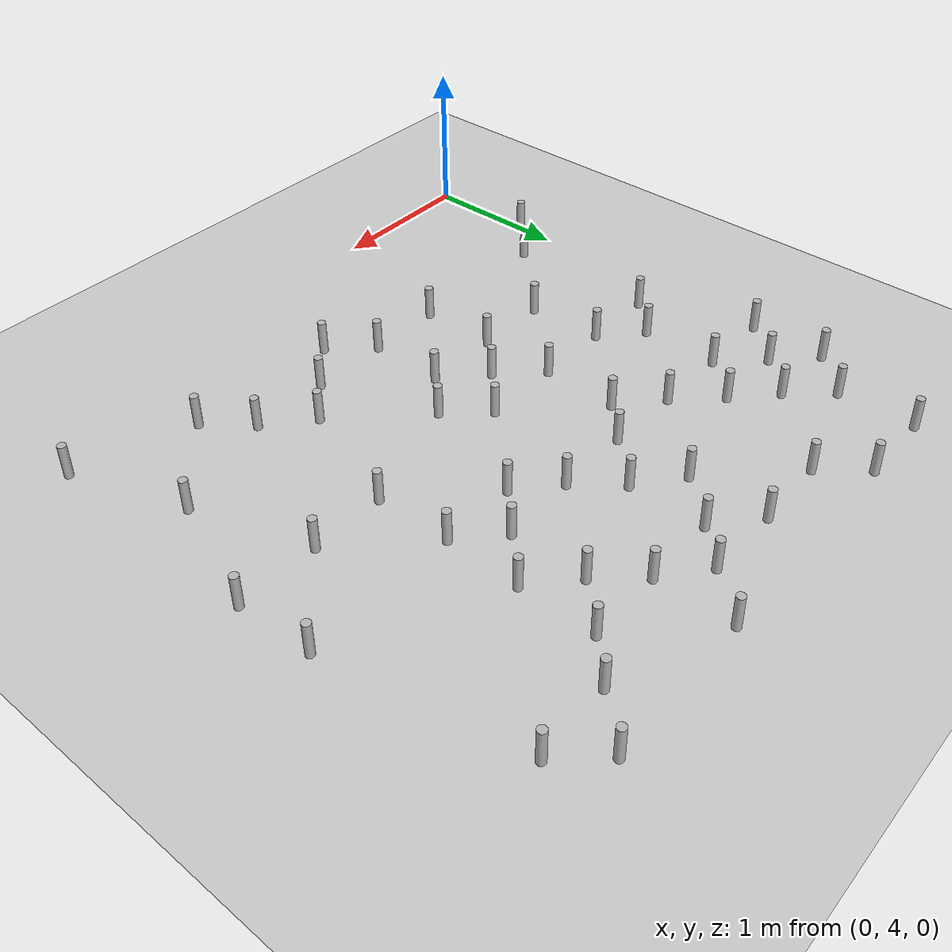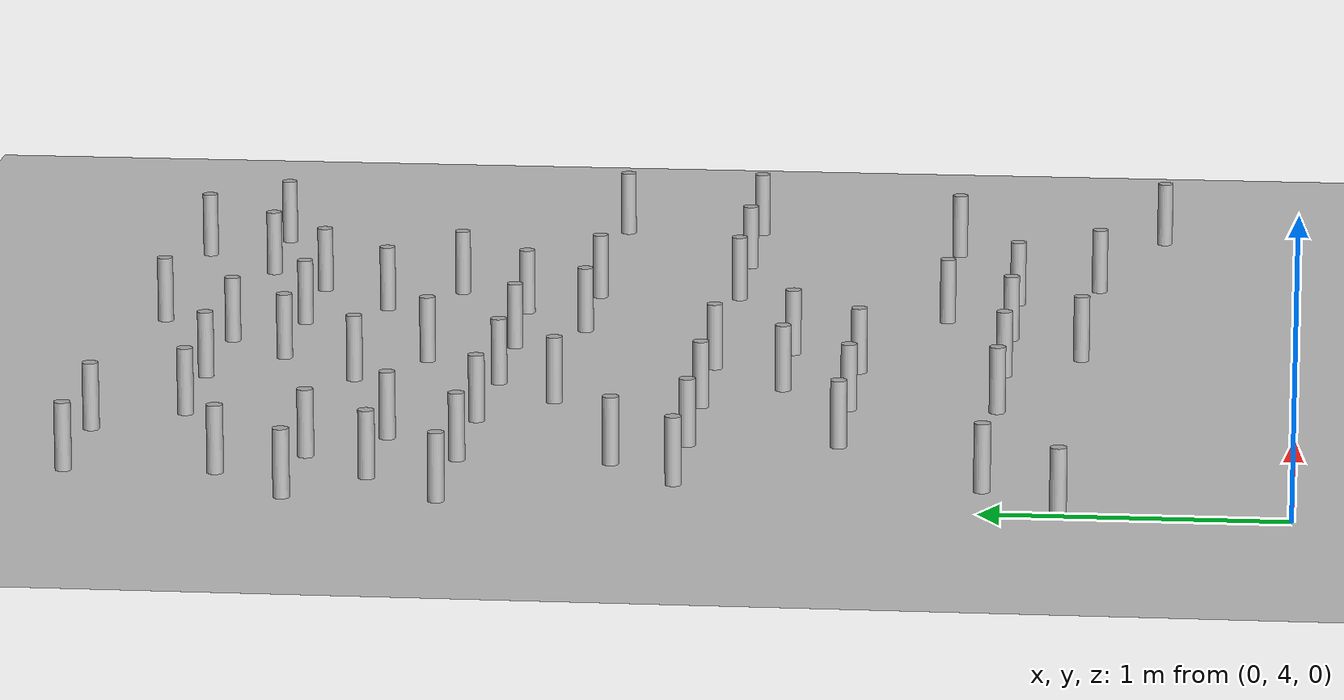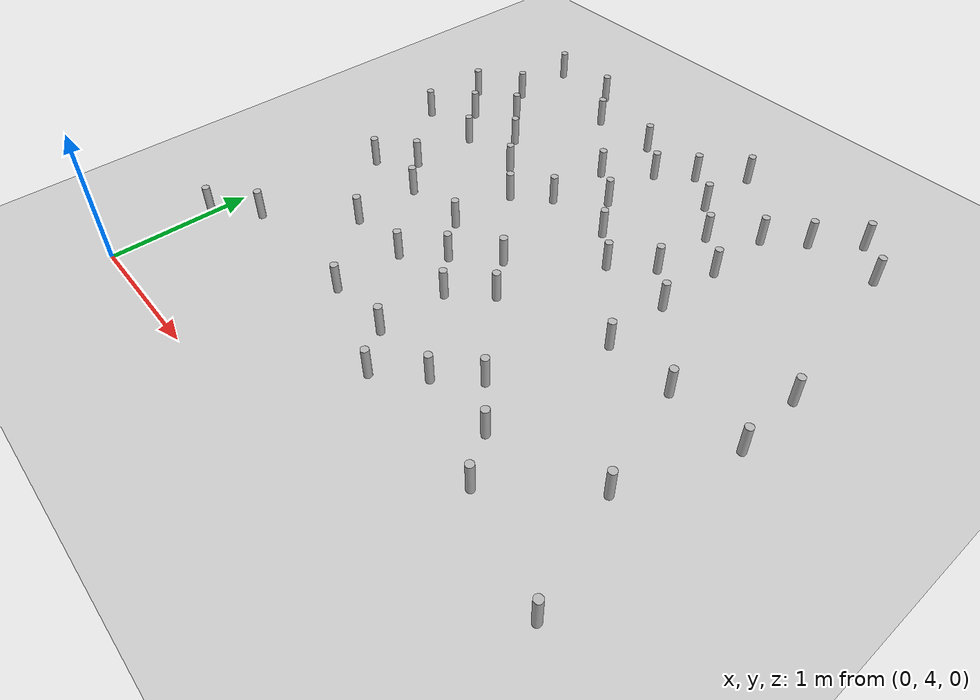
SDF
<sdf version="1.6">
 <world name="default">
  <model name="ground_plane">
   <static>1</static>
   <link name="link">
    <collision name="collision">
     <geometry><plane><normal>0 0 1</normal><size>100 100</size></plane></geometry>
     <surface><friction><ode><mu>100</mu><mu2>50</mu2></ode></friction></surface>
    </collision>
    <visual name="visual">
     <cast_shadows>0</cast_shadows>
     <geometry><plane><normal>0 0 1</normal><size>100 100</size></plane></geometry>
     <material>
      <script><uri>file://media/materials/scripts/gazebo.material</uri><name>Gazebo/Grey</name></script>
     </material>
    </visual>
   </link>
  </model>
  <model name="can1.07.71864535366">
   <link name="link">
    <pose>0 0 0.115 0 -0 0</pose>
    <inertial>
     <mass>0.39</mass>
     <inertia><ixx>0.00058</ixx><ixy>0</ixy><ixz>0</ixz><iyy>0.00058</iyy><iyz>0</iyz><izz>0.00019</izz></inertia>
    </inertial>
    <collision name="collision">
     <geometry><cylinder><radius>0.0275</radius><length>0.23</length></cylinder></geometry>
    </collision>
    <visual name="visual">
     <geometry><cylinder><radius>0.0275</radius><length>0.23</length></cylinder></geometry>
     <material>
      <script>
       <uri>model://beer/materials/scripts</uri>
       <uri>model://beer/materials/textures</uri>
       <name>Beer/Diffuse</name>
      </script>
     </material>
    </visual>
   </link>
   <pose>1.0 7.71864535366 -2e-06 1e-06 0 -9.5e-05</pose>
  </model>
  <model name="can3.251200035556.0">
   <link name="link">
    <pose>0 0 0.115 0 -0 0</pose>
    <inertial>
     <mass>0.39</mass>
     <inertia><ixx>0.00058</ixx><ixy>0</ixy><ixz>0</ixz><iyy>0.00058</iyy><iyz>0</iyz><izz>0.00019</izz></inertia>
    </inertial>
    <collision name="collision">
     <geometry><cylinder><radius>0.0275</radius><length>0.23</length></cylinder></geometry>
    </collision>
    <visual name="visual">
     <geometry><cylinder><radius>0.0275</radius><length>0.23</length></cylinder></geometry>
     <material>
      <script>
       <uri>model://beer/materials/scripts</uri>
       <uri>model://beer/materials/textures</uri>
       <name>Beer/Diffuse</name>
      </script>
     </material>
    </visual>
   </link>
   <pose>3.25120003555 6.0 -2e-06 1e-06 0 -9.5e-05</pose>
  </model>
  <model name="can1.55.7417198135">
   <link name="link">
    <pose>0 0 0.115 0 -0 0</pose>
    <inertial>
     <mass>0.39</mass>
     <inertia><ixx>0.00058</ixx><ixy>0</ixy><ixz>0</ixz><iyy>0.00058</iyy><iyz>0</iyz><izz>0.00019</izz></inertia>
    </inertial>
    <collision name="collision">
     <geometry><cylinder><radius>0.0275</radius><length>0.23</length></cylinder></geometry>
    </collision>
    <visual name="visual">
     <geometry><cylinder><radius>0.0275</radius><length>0.23</length></cylinder></geometry>
     <material>
      <script>
       <uri>model://beer/materials/scripts</uri>
       <uri>model://beer/materials/textures</uri>
       <name>Beer/Diffuse</name>
      </script>
     </material>
    </visual>
   </link>
   <pose>1.5 5.7417198135 -2e-06 1e-06 0 -9.5e-05</pose>
  </model>
  <model name="can3.26268632878.0">
   <link name="link">
    <pose>0 0 0.115 0 -0 0</pose>
    <inertial>
     <mass>0.39</mass>
     <inertia><ixx>0.00058</ixx><ixy>0</ixy><ixz>0</ixz><iyy>0.00058</iyy><iyz>0</iyz><izz>0.00019</izz></inertia>
    </inertial>
    <collision name="collision">
     <geometry><cylinder><radius>0.0275</radius><length>0.23</length></cylinder></geometry>
    </collision>
    <visual name="visual">
     <geometry><cylinder><radius>0.0275</radius><length>0.23</length></cylinder></geometry>
     <material>
      <script>
       <uri>model://beer/materials/scripts</uri>
       <uri>model://beer/materials/textures</uri>
       <name>Beer/Diffuse</name>
      </script>
     </material>
    </visual>
   </link>
   <pose>3.2626863287 8.0 -2e-06 1e-06 0 -9.5e-05</pose>
  </model>
  <model name="can1.57.73077224657">
   <link name="link">
    <pose>0 0 0.115 0 -0 0</pose>
    <inertial>
     <mass>0.39</mass>
     <inertia><ixx>0.00058</ixx><ixy>0</ixy><ixz>0</ixz><iyy>0.00058</iyy><iyz>0</iyz><izz>0.00019</izz></inertia>
    </inertial>
    <collision name="collision">
     <geometry><cylinder><radius>0.0275</radius><length>0.23</length></cylinder></geometry>
    </collision>
    <visual name="visual">
     <geometry><cylinder><radius>0.0275</radius><length>0.23</length></cylinder></geometry>
     <material>
      <script>
       <uri>model://beer/materials/scripts</uri>
       <uri>model://beer/materials/textures</uri>
       <name>Beer/Diffuse</name>
      </script>
     </material>
    </visual>
   </link>
   <pose>1.5 7.73077224657 -2e-06 1e-06 0 -9.5e-05</pose>
  </model>
  <model name="can0.57.23638221713">
   <link name="link">
    <pose>0 0 0.115 0 -0 0</pose>
    <inertial>
     <mass>0.39</mass>
     <inertia><ixx>0.00058</ixx><ixy>0</ixy><ixz>0</ixz><iyy>0.00058</iyy><iyz>0</iyz><izz>0.00019</izz></inertia>
    </inertial>
    <collision name="collision">
     <geometry><cylinder><radius>0.0275</radius><length>0.23</length></cylinder></geometry>
    </collision>
    <visual name="visual">
     <geometry><cylinder><radius>0.0275</radius><length>0.23</length></cylinder></geometry>
     <material>
      <script>
       <uri>model://beer/materials/scripts</uri>
       <uri>model://beer/materials/textures</uri>
       <name>Beer/Diffuse</name>
      </script>
     </material>
    </visual>
   </link>
   <pose>0.5 7.23638221713 -2e-06 1e-06 0 -9.5e-05</pose>
  </model>
  <model name="can1.06.73229137934">
   <link name="link">
    <pose>0 0 0.115 0 -0 0</pose>
    <inertial>
     <mass>0.39</mass>
     <inertia><ixx>0.00058</ixx><ixy>0</ixy><ixz>0</ixz><iyy>0.00058</iyy><iyz>0</iyz><izz>0.00019</izz></inertia>
    </inertial>
    <collision name="collision">
     <geometry><cylinder><radius>0.0275</radius><length>0.23</length></cylinder></geometry>
    </collision>
    <visual name="visual">
     <geometry><cylinder><radius>0.0275</radius><length>0.23</length></cylinder></geometry>
     <material>
      <script>
       <uri>model://beer/materials/scripts</uri>
       <uri>model://beer/materials/textures</uri>
       <name>Beer/Diffuse</name>
      </script>
     </material>
    </visual>
   </link>
   <pose>1.0 6.73229137934 -2e-06 1e-06 0 -9.5e-05</pose>
  </model>
  <model name="can0.25373270277.0">
   <link name="link">
    <pose>0 0 0.115 0 -0 0</pose>
    <inertial>
     <mass>0.39</mass>
     <inertia><ixx>0.00058</ixx><ixy>0</ixy><ixz>0</ixz><iyy>0.00058</iyy><iyz>0</iyz><izz>0.00019</izz></inertia>
    </inertial>
    <collision name="collision">
     <geometry><cylinder><radius>0.0275</radius><length>0.23</length></cylinder></geometry>
    </collision>
    <visual name="visual">
     <geometry><cylinder><radius>0.0275</radius><length>0.23</length></cylinder></geometry>
     <material>
      <script>
       <uri>model://beer/materials/scripts</uri>
       <uri>model://beer/materials/textures</uri>
       <name>Beer/Diffuse</name>
      </script>
     </material>
    </visual>
   </link>
   <pose>0.2537327027 7.0 -2e-06 1e-06 0 -9.5e-05</pose>
  </model>
  <model name="can2.07.71637304159">
   <link name="link">
    <pose>0 0 0.115 0 -0 0</pose>
    <inertial>
     <mass>0.39</mass>
     <inertia><ixx>0.00058</ixx><ixy>0</ixy><ixz>0</ixz><iyy>0.00058</iyy><iyz>0</iyz><izz>0.00019</izz></inertia>
    </inertial>
    <collision name="collision">
     <geometry><cylinder><radius>0.0275</radius><length>0.23</length></cylinder></geometry>
    </collision>
    <visual name="visual">
     <geometry><cylinder><radius>0.0275</radius><length>0.23</length></cylinder></geometry>
     <material>
      <script>
       <uri>model://beer/materials/scripts</uri>
       <uri>model://beer/materials/textures</uri>
       <name>Beer/Diffuse</name>
      </script>
     </material>
    </visual>
   </link>
   <pose>2.0 7.71637304159 -2e-06 1e-06 0 -9.5e-05</pose>
  </model>
  <model name="can1.270332725475.0">
   <link name="link">
    <pose>0 0 0.115 0 -0 0</pose>
    <inertial>
     <mass>0.39</mass>
     <inertia><ixx>0.00058</ixx><ixy>0</ixy><ixz>0</ixz><iyy>0.00058</iyy><iyz>0</iyz><izz>0.00019</izz></inertia>
    </inertial>
    <collision name="collision">
     <geometry><cylinder><radius>0.0275</radius><length>0.23</length></cylinder></geometry>
    </collision>
    <visual name="visual">
     <geometry><cylinder><radius>0.0275</radius><length>0.23</length></cylinder></geometry>
     <material>
      <script>
       <uri>model://beer/materials/scripts</uri>
       <uri>model://beer/materials/textures</uri>
       <name>Beer/Diffuse</name>
      </script>
     </material>
    </visual>
   </link>
   <pose>1.27033272547 5.0 -2e-06 1e-06 0 -9.5e-05</pose>
  </model>
  <model name="can0.2743662335275.0">
   <link name="link">
    <pose>0 0 0.115 0 -0 0</pose>
    <inertial>
     <mass>0.39</mass>
     <inertia><ixx>0.00058</ixx><ixy>0</ixy><ixz>0</ixz><iyy>0.00058</iyy><iyz>0</iyz><izz>0.00019</izz></inertia>
    </inertial>
    <collision name="collision">
     <geometry><cylinder><radius>0.0275</radius><length>0.23</length></cylinder></geometry>
    </collision>
    <visual name="visual">
     <geometry><cylinder><radius>0.0275</radius><length>0.23</length></cylinder></geometry>
     <material>
      <script>
       <uri>model://beer/materials/scripts</uri>
       <uri>model://beer/materials/textures</uri>
       <name>Beer/Diffuse</name>
      </script>
     </material>
    </visual>
   </link>
   <pose>0.274366233527 5.0 -2e-06 1e-06 0 -9.5e-05</pose>
  </model>
  <model name="can0.56.73592905389">
   <link name="link">
    <pose>0 0 0.115 0 -0 0</pose>
    <inertial>
     <mass>0.39</mass>
     <inertia><ixx>0.00058</ixx><ixy>0</ixy><ixz>0</ixz><iyy>0.00058</iyy><iyz>0</iyz><izz>0.00019</izz></inertia>
    </inertial>
    <collision name="collision">
     <geometry><cylinder><radius>0.0275</radius><length>0.23</length></cylinder></geometry>
    </collision>
    <visual name="visual">
     <geometry><cylinder><radius>0.0275</radius><length>0.23</length></cylinder></geometry>
     <material>
      <script>
       <uri>model://beer/materials/scripts</uri>
       <uri>model://beer/materials/textures</uri>
       <name>Beer/Diffuse</name>
      </script>
     </material>
    </visual>
   </link>
   <pose>0.5 6.73592905389 -2e-06 1e-06 0 -9.5e-05</pose>
  </model>
  <model name="can2.26621983638.0">
   <link name="link">
    <pose>0 0 0.115 0 -0 0</pose>
    <inertial>
     <mass>0.39</mass>
     <inertia><ixx>0.00058</ixx><ixy>0</ixy><ixz>0</ixz><iyy>0.00058</iyy><iyz>0</iyz><izz>0.00019</izz></inertia>
    </inertial>
    <collision name="collision">
     <geometry><cylinder><radius>0.0275</radius><length>0.23</length></cylinder></geometry>
    </collision>
    <visual name="visual">
     <geometry><cylinder><radius>0.0275</radius><length>0.23</length></cylinder></geometry>
     <material>
      <script>
       <uri>model://beer/materials/scripts</uri>
       <uri>model://beer/materials/textures</uri>
       <name>Beer/Diffuse</name>
      </script>
     </material>
    </visual>
   </link>
   <pose>2.2662198363 8.0 -2e-06 1e-06 0 -9.5e-05</pose>
  </model>
  <model name="can0.2615410947188.0">
   <link name="link">
    <pose>0 0 0.115 0 -0 0</pose>
    <inertial>
     <mass>0.39</mass>
     <inertia><ixx>0.00058</ixx><ixy>0</ixy><ixz>0</ixz><iyy>0.00058</iyy><iyz>0</iyz><izz>0.00019</izz></inertia>
    </inertial>
    <collision name="collision">
     <geometry><cylinder><radius>0.0275</radius><length>0.23</length></cylinder></geometry>
    </collision>
    <visual name="visual">
     <geometry><cylinder><radius>0.0275</radius><length>0.23</length></cylinder></geometry>
     <material>
      <script>
       <uri>model://beer/materials/scripts</uri>
       <uri>model://beer/materials/textures</uri>
       <name>Beer/Diffuse</name>
      </script>
     </material>
    </visual>
   </link>
   <pose>0.261541094718 8.0 -2e-06 1e-06 0 -9.5e-05</pose>
  </model>
  <model name="can0.7530170957196.0">
   <link name="link">
    <pose>0 0 0.115 0 -0 0</pose>
    <inertial>
     <mass>0.39</mass>
     <inertia><ixx>0.00058</ixx><ixy>0</ixy><ixz>0</ixz><iyy>0.00058</iyy><iyz>0</iyz><izz>0.00019</izz></inertia>
    </inertial>
    <collision name="collision">
     <geometry><cylinder><radius>0.0275</radius><length>0.23</length></cylinder></geometry>
    </collision>
    <visual name="visual">
     <geometry><cylinder><radius>0.0275</radius><length>0.23</length></cylinder></geometry>
     <material>
      <script>
       <uri>model://beer/materials/scripts</uri>
       <uri>model://beer/materials/textures</uri>
       <name>Beer/Diffuse</name>
      </script>
     </material>
    </visual>
   </link>
   <pose>0.753017095719 6.0 -2e-06 1e-06 0 -9.5e-05</pose>
  </model>
  <model name="can3.04.71551718072">
   <link name="link">
    <pose>0 0 0.115 0 -0 0</pose>
    <inertial>
     <mass>0.39</mass>
     <inertia><ixx>0.00058</ixx><ixy>0</ixy><ixz>0</ixz><iyy>0.00058</iyy><iyz>0</iyz><izz>0.00019</izz></inertia>
    </inertial>
    <collision name="collision">
     <geometry><cylinder><radius>0.0275</radius><length>0.23</length></cylinder></geometry>
    </collision>
    <visual name="visual">
     <geometry><cylinder><radius>0.0275</radius><length>0.23</length></cylinder></geometry>
     <material>
      <script>
       <uri>model://beer/materials/scripts</uri>
       <uri>model://beer/materials/textures</uri>
       <name>Beer/Diffuse</name>
      </script>
     </material>
    </visual>
   </link>
   <pose>3.0 4.71551718072 -2e-06 1e-06 0 -9.5e-05</pose>
  </model>
  <model name="can1.57.21565840624">
   <link name="link">
    <pose>0 0 0.115 0 -0 0</pose>
    <inertial>
     <mass>0.39</mass>
     <inertia><ixx>0.00058</ixx><ixy>0</ixy><ixz>0</ixz><iyy>0.00058</iyy><iyz>0</iyz><izz>0.00019</izz></inertia>
    </inertial>
    <collision name="collision">
     <geometry><cylinder><radius>0.0275</radius><length>0.23</length></cylinder></geometry>
    </collision>
    <visual name="visual">
     <geometry><cylinder><radius>0.0275</radius><length>0.23</length></cylinder></geometry>
     <material>
      <script>
       <uri>model://beer/materials/scripts</uri>
       <uri>model://beer/materials/textures</uri>
       <name>Beer/Diffuse</name>
      </script>
     </material>
    </visual>
   </link>
   <pose>1.5 7.21565840624 -2e-06 1e-06 0 -9.5e-05</pose>
  </model>
  <model name="can2.06.72047511491">
   <link name="link">
    <pose>0 0 0.115 0 -0 0</pose>
    <inertial>
     <mass>0.39</mass>
     <inertia><ixx>0.00058</ixx><ixy>0</ixy><ixz>0</ixz><iyy>0.00058</iyy><iyz>0</iyz><izz>0.00019</izz></inertia>
    </inertial>
    <collision name="collision">
     <geometry><cylinder><radius>0.0275</radius><length>0.23</length></cylinder></geometry>
    </collision>
    <visual name="visual">
     <geometry><cylinder><radius>0.0275</radius><length>0.23</length></cylinder></geometry>
     <material>
      <script>
       <uri>model://beer/materials/scripts</uri>
       <uri>model://beer/materials/textures</uri>
       <name>Beer/Diffuse</name>
      </script>
     </material>
    </visual>
   </link>
   <pose>2.0 6.72047511491 -2e-06 1e-06 0 -9.5e-05</pose>
  </model>
  <model name="can3.57.74040622642">
   <link name="link">
    <pose>0 0 0.115 0 -0 0</pose>
    <inertial>
     <mass>0.39</mass>
     <inertia><ixx>0.00058</ixx><ixy>0</ixy><ixz>0</ixz><iyy>0.00058</iyy><iyz>0</iyz><izz>0.00019</izz></inertia>
    </inertial>
    <collision name="collision">
     <geometry><cylinder><radius>0.0275</radius><length>0.23</length></cylinder></geometry>
    </collision>
    <visual name="visual">
     <geometry><cylinder><radius>0.0275</radius><length>0.23</length></cylinder></geometry>
     <material>
      <script>
       <uri>model://beer/materials/scripts</uri>
       <uri>model://beer/materials/textures</uri>
       <name>Beer/Diffuse</name>
      </script>
     </material>
    </visual>
   </link>
   <pose>3.5 7.74040622642 -2e-06 1e-06 0 -9.5e-05</pose>
  </model>
  <model name="can1.782580695847.0">
   <link name="link">
    <pose>0 0 0.115 0 -0 0</pose>
    <inertial>
     <mass>0.39</mass>
     <inertia><ixx>0.00058</ixx><ixy>0</ixy><ixz>0</ixz><iyy>0.00058</iyy><iyz>0</iyz><izz>0.00019</izz></inertia>
    </inertial>
    <collision name="collision">
     <geometry><cylinder><radius>0.0275</radius><length>0.23</length></cylinder></geometry>
    </collision>
    <visual name="visual">
     <geometry><cylinder><radius>0.0275</radius><length>0.23</length></cylinder></geometry>
     <material>
      <script>
       <uri>model://beer/materials/scripts</uri>
       <uri>model://beer/materials/textures</uri>
       <name>Beer/Diffuse</name>
      </script>
     </material>
    </visual>
   </link>
   <pose>1.78258069584 7.0 -2e-06 1e-06 0 -9.5e-05</pose>
  </model>
  <model name="can2.274333055627.5">
   <link name="link">
    <pose>0 0 0.115 0 -0 0</pose>
    <inertial>
     <mass>0.39</mass>
     <inertia><ixx>0.00058</ixx><ixy>0</ixy><ixz>0</ixz><iyy>0.00058</iyy><iyz>0</iyz><izz>0.00019</izz></inertia>
    </inertial>
    <collision name="collision">
     <geometry><cylinder><radius>0.0275</radius><length>0.23</length></cylinder></geometry>
    </collision>
    <visual name="visual">
     <geometry><cylinder><radius>0.0275</radius><length>0.23</length></cylinder></geometry>
     <material>
      <script>
       <uri>model://beer/materials/scripts</uri>
       <uri>model://beer/materials/textures</uri>
       <name>Beer/Diffuse</name>
      </script>
     </material>
    </visual>
   </link>
   <pose>2.27433305562 7.5 -2e-06 1e-06 0 -9.5e-05</pose>
  </model>
  <model name="can1.56.71661986498">
   <link name="link">
    <pose>0 0 0.115 0 -0 0</pose>
    <inertial>
     <mass>0.39</mass>
     <inertia><ixx>0.00058</ixx><ixy>0</ixy><ixz>0</ixz><iyy>0.00058</iyy><iyz>0</iyz><izz>0.00019</izz></inertia>
    </inertial>
    <collision name="collision">
     <geometry><cylinder><radius>0.0275</radius><length>0.23</length></cylinder></geometry>
    </collision>
    <visual name="visual">
     <geometry><cylinder><radius>0.0275</radius><length>0.23</length></cylinder></geometry>
     <material>
      <script>
       <uri>model://beer/materials/scripts</uri>
       <uri>model://beer/materials/textures</uri>
       <name>Beer/Diffuse</name>
      </script>
     </material>
    </visual>
   </link>
   <pose>1.5 6.71661986498 -2e-06 1e-06 0 -9.5e-05</pose>
  </model>
  <model name="can0.777479568265.5">
   <link name="link">
    <pose>0 0 0.115 0 -0 0</pose>
    <inertial>
     <mass>0.39</mass>
     <inertia><ixx>0.00058</ixx><ixy>0</ixy><ixz>0</ixz><iyy>0.00058</iyy><iyz>0</iyz><izz>0.00019</izz></inertia>
    </inertial>
    <collision name="collision">
     <geometry><cylinder><radius>0.0275</radius><length>0.23</length></cylinder></geometry>
    </collision>
    <visual name="visual">
     <geometry><cylinder><radius>0.0275</radius><length>0.23</length></cylinder></geometry>
     <material>
      <script>
       <uri>model://beer/materials/scripts</uri>
       <uri>model://beer/materials/textures</uri>
       <name>Beer/Diffuse</name>
      </script>
     </material>
    </visual>
   </link>
   <pose>0.77747956826 5.5 -2e-06 1e-06 0 -9.5e-05</pose>
  </model>
  <model name="can3.778318997486.0">
   <link name="link">
    <pose>0 0 0.115 0 -0 0</pose>
    <inertial>
     <mass>0.39</mass>
     <inertia><ixx>0.00058</ixx><ixy>0</ixy><ixz>0</ixz><iyy>0.00058</iyy><iyz>0</iyz><izz>0.00019</izz></inertia>
    </inertial>
    <collision name="collision">
     <geometry><cylinder><radius>0.0275</radius><length>0.23</length></cylinder></geometry>
    </collision>
    <visual name="visual">
     <geometry><cylinder><radius>0.0275</radius><length>0.23</length></cylinder></geometry>
     <material>
      <script>
       <uri>model://beer/materials/scripts</uri>
       <uri>model://beer/materials/textures</uri>
       <name>Beer/Diffuse</name>
      </script>
     </material>
    </visual>
   </link>
   <pose>3.77831899748 6.0 -2e-06 1e-06 0 -9.5e-05</pose>
  </model>
  <model name="can0.7751452389848.0">
   <link name="link">
    <pose>0 0 0.115 0 -0 0</pose>
    <inertial>
     <mass>0.39</mass>
     <inertia><ixx>0.00058</ixx><ixy>0</ixy><ixz>0</ixz><iyy>0.00058</iyy><iyz>0</iyz><izz>0.00019</izz></inertia>
    </inertial>
    <collision name="collision">
     <geometry><cylinder><radius>0.0275</radius><length>0.23</length></cylinder></geometry>
    </collision>
    <visual name="visual">
     <geometry><cylinder><radius>0.0275</radius><length>0.23</length></cylinder></geometry>
     <material>
      <script>
       <uri>model://beer/materials/scripts</uri>
       <uri>model://beer/materials/textures</uri>
       <name>Beer/Diffuse</name>
      </script>
     </material>
    </visual>
   </link>
   <pose>0.775145238984 8.0 -2e-06 1e-06 0 -9.5e-05</pose>
  </model>
  <model name="can2.05.74575898801">
   <link name="link">
    <pose>0 0 0.115 0 -0 0</pose>
    <inertial>
     <mass>0.39</mass>
     <inertia><ixx>0.00058</ixx><ixy>0</ixy><ixz>0</ixz><iyy>0.00058</iyy><iyz>0</iyz><izz>0.00019</izz></inertia>
    </inertial>
    <collision name="collision">
     <geometry><cylinder><radius>0.0275</radius><length>0.23</length></cylinder></geometry>
    </collision>
    <visual name="visual">
     <geometry><cylinder><radius>0.0275</radius><length>0.23</length></cylinder></geometry>
     <material>
      <script>
       <uri>model://beer/materials/scripts</uri>
       <uri>model://beer/materials/textures</uri>
       <name>Beer/Diffuse</name>
      </script>
     </material>
    </visual>
   </link>
   <pose>2.0 5.74575898801 -2e-06 1e-06 0 -9.5e-05</pose>
  </model>
  <model name="can2.75522813226.5">
   <link name="link">
    <pose>0 0 0.115 0 -0 0</pose>
    <inertial>
     <mass>0.39</mass>
     <inertia><ixx>0.00058</ixx><ixy>0</ixy><ixz>0</ixz><iyy>0.00058</iyy><iyz>0</iyz><izz>0.00019</izz></inertia>
    </inertial>
    <collision name="collision">
     <geometry><cylinder><radius>0.0275</radius><length>0.23</length></cylinder></geometry>
    </collision>
    <visual name="visual">
     <geometry><cylinder><radius>0.0275</radius><length>0.23</length></cylinder></geometry>
     <material>
      <script>
       <uri>model://beer/materials/scripts</uri>
       <uri>model://beer/materials/textures</uri>
       <name>Beer/Diffuse</name>
      </script>
     </material>
    </visual>
   </link>
   <pose>2.7552281322 6.5 -2e-06 1e-06 0 -9.5e-05</pose>
  </model>
  <model name="can2.78297375385.0">
   <link name="link">
    <pose>0 0 0.115 0 -0 0</pose>
    <inertial>
     <mass>0.39</mass>
     <inertia><ixx>0.00058</ixx><ixy>0</ixy><ixz>0</ixz><iyy>0.00058</iyy><iyz>0</iyz><izz>0.00019</izz></inertia>
    </inertial>
    <collision name="collision">
     <geometry><cylinder><radius>0.0275</radius><length>0.23</length></cylinder></geometry>
    </collision>
    <visual name="visual">
     <geometry><cylinder><radius>0.0275</radius><length>0.23</length></cylinder></geometry>
     <material>
      <script>
       <uri>model://beer/materials/scripts</uri>
       <uri>model://beer/materials/textures</uri>
       <name>Beer/Diffuse</name>
      </script>
     </material>
    </visual>
   </link>
   <pose>2.7829737538 5.0 -2e-06 1e-06 0 -9.5e-05</pose>
  </model>
  <model name="can2.269760564585.0">
   <link name="link">
    <pose>0 0 0.115 0 -0 0</pose>
    <inertial>
     <mass>0.39</mass>
     <inertia><ixx>0.00058</ixx><ixy>0</ixy><ixz>0</ixz><iyy>0.00058</iyy><iyz>0</iyz><izz>0.00019</izz></inertia>
    </inertial>
    <collision name="collision">
     <geometry><cylinder><radius>0.0275</radius><length>0.23</length></cylinder></geometry>
    </collision>
    <visual name="visual">
     <geometry><cylinder><radius>0.0275</radius><length>0.23</length></cylinder></geometry>
     <material>
      <script>
       <uri>model://beer/materials/scripts</uri>
       <uri>model://beer/materials/textures</uri>
       <name>Beer/Diffuse</name>
      </script>
     </material>
    </visual>
   </link>
   <pose>2.26976056458 5.0 -2e-06 1e-06 0 -9.5e-05</pose>
  </model>
  <model name="can1.773240981196.0">
   <link name="link">
    <pose>0 0 0.115 0 -0 0</pose>
    <inertial>
     <mass>0.39</mass>
     <inertia><ixx>0.00058</ixx><ixy>0</ixy><ixz>0</ixz><iyy>0.00058</iyy><iyz>0</iyz><izz>0.00019</izz></inertia>
    </inertial>
    <collision name="collision">
     <geometry><cylinder><radius>0.0275</radius><length>0.23</length></cylinder></geometry>
    </collision>
    <visual name="visual">
     <geometry><cylinder><radius>0.0275</radius><length>0.23</length></cylinder></geometry>
     <material>
      <script>
       <uri>model://beer/materials/scripts</uri>
       <uri>model://beer/materials/textures</uri>
       <name>Beer/Diffuse</name>
      </script>
     </material>
    </visual>
   </link>
   <pose>1.77324098119 6.0 -2e-06 1e-06 0 -9.5e-05</pose>
  </model>
  <model name="can0.56.22770437576">
   <link name="link">
    <pose>0 0 0.115 0 -0 0</pose>
    <inertial>
     <mass>0.39</mass>
     <inertia><ixx>0.00058</ixx><ixy>0</ixy><ixz>0</ixz><iyy>0.00058</iyy><iyz>0</iyz><izz>0.00019</izz></inertia>
    </inertial>
    <collision name="collision">
     <geometry><cylinder><radius>0.0275</radius><length>0.23</length></cylinder></geometry>
    </collision>
    <visual name="visual">
     <geometry><cylinder><radius>0.0275</radius><length>0.23</length></cylinder></geometry>
     <material>
      <script>
       <uri>model://beer/materials/scripts</uri>
       <uri>model://beer/materials/textures</uri>
       <name>Beer/Diffuse</name>
      </script>
     </material>
    </visual>
   </link>
   <pose>0.5 6.22770437576 -2e-06 1e-06 0 -9.5e-05</pose>
  </model>
  <model name="can2.766404109747.0">
   <link name="link">
    <pose>0 0 0.115 0 -0 0</pose>
    <inertial>
     <mass>0.39</mass>
     <inertia><ixx>0.00058</ixx><ixy>0</ixy><ixz>0</ixz><iyy>0.00058</iyy><iyz>0</iyz><izz>0.00019</izz></inertia>
    </inertial>
    <collision name="collision">
     <geometry><cylinder><radius>0.0275</radius><length>0.23</length></cylinder></geometry>
    </collision>
    <visual name="visual">
     <geometry><cylinder><radius>0.0275</radius><length>0.23</length></cylinder></geometry>
     <material>
      <script>
       <uri>model://beer/materials/scripts</uri>
       <uri>model://beer/materials/textures</uri>
       <name>Beer/Diffuse</name>
      </script>
     </material>
    </visual>
   </link>
   <pose>2.76640410974 7.0 -2e-06 1e-06 0 -9.5e-05</pose>
  </model>
  <model name="can2.76403576627.5">
   <link name="link">
    <pose>0 0 0.115 0 -0 0</pose>
    <inertial>
     <mass>0.39</mass>
     <inertia><ixx>0.00058</ixx><ixy>0</ixy><ixz>0</ixz><iyy>0.00058</iyy><iyz>0</iyz><izz>0.00019</izz></inertia>
    </inertial>
    <collision name="collision">
     <geometry><cylinder><radius>0.0275</radius><length>0.23</length></cylinder></geometry>
    </collision>
    <visual name="visual">
     <geometry><cylinder><radius>0.0275</radius><length>0.23</length></cylinder></geometry>
     <material>
      <script>
       <uri>model://beer/materials/scripts</uri>
       <uri>model://beer/materials/textures</uri>
       <name>Beer/Diffuse</name>
      </script>
     </material>
    </visual>
   </link>
   <pose>2.7640357662 7.5 -2e-06 1e-06 0 -9.5e-05</pose>
  </model>
  <model name="can1.763538756665.5">
   <link name="link">
    <pose>0 0 0.115 0 -0 0</pose>
    <inertial>
     <mass>0.39</mass>
     <inertia><ixx>0.00058</ixx><ixy>0</ixy><ixz>0</ixz><iyy>0.00058</iyy><iyz>0</iyz><izz>0.00019</izz></inertia>
    </inertial>
    <collision name="collision">
     <geometry><cylinder><radius>0.0275</radius><length>0.23</length></cylinder></geometry>
    </collision>
    <visual name="visual">
     <geometry><cylinder><radius>0.0275</radius><length>0.23</length></cylinder></geometry>
     <material>
      <script>
       <uri>model://beer/materials/scripts</uri>
       <uri>model://beer/materials/textures</uri>
       <name>Beer/Diffuse</name>
      </script>
     </material>
    </visual>
   </link>
   <pose>1.76353875666 5.5 -2e-06 1e-06 0 -9.5e-05</pose>
  </model>
  <model name="can2.56.73546829516">
   <link name="link">
    <pose>0 0 0.115 0 -0 0</pose>
    <inertial>
     <mass>0.39</mass>
     <inertia><ixx>0.00058</ixx><ixy>0</ixy><ixz>0</ixz><iyy>0.00058</iyy><iyz>0</iyz><izz>0.00019</izz></inertia>
    </inertial>
    <collision name="collision">
     <geometry><cylinder><radius>0.0275</radius><length>0.23</length></cylinder></geometry>
    </collision>
    <visual name="visual">
     <geometry><cylinder><radius>0.0275</radius><length>0.23</length></cylinder></geometry>
     <material>
      <script>
       <uri>model://beer/materials/scripts</uri>
       <uri>model://beer/materials/textures</uri>
       <name>Beer/Diffuse</name>
      </script>
     </material>
    </visual>
   </link>
   <pose>2.5 6.73546829516 -2e-06 1e-06 0 -9.5e-05</pose>
  </model>
  <model name="can0.7510801283567.0">
   <link name="link">
    <pose>0 0 0.115 0 -0 0</pose>
    <inertial>
     <mass>0.39</mass>
     <inertia><ixx>0.00058</ixx><ixy>0</ixy><ixz>0</ixz><iyy>0.00058</iyy><iyz>0</iyz><izz>0.00019</izz></inertia>
    </inertial>
    <collision name="collision">
     <geometry><cylinder><radius>0.0275</radius><length>0.23</length></cylinder></geometry>
    </collision>
    <visual name="visual">
     <geometry><cylinder><radius>0.0275</radius><length>0.23</length></cylinder></geometry>
     <material>
      <script>
       <uri>model://beer/materials/scripts</uri>
       <uri>model://beer/materials/textures</uri>
       <name>Beer/Diffuse</name>
      </script>
     </material>
    </visual>
   </link>
   <pose>0.751080128356 7.0 -2e-06 1e-06 0 -9.5e-05</pose>
  </model>
  <model name="can0.04.74362896119">
   <link name="link">
    <pose>0 0 0.115 0 -0 0</pose>
    <inertial>
     <mass>0.39</mass>
     <inertia><ixx>0.00058</ixx><ixy>0</ixy><ixz>0</ixz><iyy>0.00058</iyy><iyz>0</iyz><izz>0.00019</izz></inertia>
    </inertial>
    <collision name="collision">
     <geometry><cylinder><radius>0.0275</radius><length>0.23</length></cylinder></geometry>
    </collision>
    <visual name="visual">
     <geometry><cylinder><radius>0.0275</radius><length>0.23</length></cylinder></geometry>
     <material>
      <script>
       <uri>model://beer/materials/scripts</uri>
       <uri>model://beer/materials/textures</uri>
       <name>Beer/Diffuse</name>
      </script>
     </material>
    </visual>
   </link>
   <pose>0.0 4.74362896119 -2e-06 1e-06 0 -9.5e-05</pose>
  </model>
  <model name="can2.04.74428785721">
   <link name="link">
    <pose>0 0 0.115 0 -0 0</pose>
    <inertial>
     <mass>0.39</mass>
     <inertia><ixx>0.00058</ixx><ixy>0</ixy><ixz>0</ixz><iyy>0.00058</iyy><iyz>0</iyz><izz>0.00019</izz></inertia>
    </inertial>
    <collision name="collision">
     <geometry><cylinder><radius>0.0275</radius><length>0.23</length></cylinder></geometry>
    </collision>
    <visual name="visual">
     <geometry><cylinder><radius>0.0275</radius><length>0.23</length></cylinder></geometry>
     <material>
      <script>
       <uri>model://beer/materials/scripts</uri>
       <uri>model://beer/materials/textures</uri>
       <name>Beer/Diffuse</name>
      </script>
     </material>
    </visual>
   </link>
   <pose>2.0 4.74428785721 -2e-06 1e-06 0 -9.5e-05</pose>
  </model>
  <model name="can0.2719478298047.5">
   <link name="link">
    <pose>0 0 0.115 0 -0 0</pose>
    <inertial>
     <mass>0.39</mass>
     <inertia><ixx>0.00058</ixx><ixy>0</ixy><ixz>0</ixz><iyy>0.00058</iyy><iyz>0</iyz><izz>0.00019</izz></inertia>
    </inertial>
    <collision name="collision">
     <geometry><cylinder><radius>0.0275</radius><length>0.23</length></cylinder></geometry>
    </collision>
    <visual name="visual">
     <geometry><cylinder><radius>0.0275</radius><length>0.23</length></cylinder></geometry>
     <material>
      <script>
       <uri>model://beer/materials/scripts</uri>
       <uri>model://beer/materials/textures</uri>
       <name>Beer/Diffuse</name>
      </script>
     </material>
    </visual>
   </link>
   <pose>0.271947829804 7.5 -2e-06 1e-06 0 -9.5e-05</pose>
  </model>
  <model name="can3.758926614994.5">
   <link name="link">
    <pose>0 0 0.115 0 -0 0</pose>
    <inertial>
     <mass>0.39</mass>
     <inertia><ixx>0.00058</ixx><ixy>0</ixy><ixz>0</ixz><iyy>0.00058</iyy><iyz>0</iyz><izz>0.00019</izz></inertia>
    </inertial>
    <collision name="collision">
     <geometry><cylinder><radius>0.0275</radius><length>0.23</length></cylinder></geometry>
    </collision>
    <visual name="visual">
     <geometry><cylinder><radius>0.0275</radius><length>0.23</length></cylinder></geometry>
     <material>
      <script>
       <uri>model://beer/materials/scripts</uri>
       <uri>model://beer/materials/textures</uri>
       <name>Beer/Diffuse</name>
      </script>
     </material>
    </visual>
   </link>
   <pose>3.75892661499 4.5 -2e-06 1e-06 0 -9.5e-05</pose>
  </model>
  <model name="can1.267889787726.5">
   <link name="link">
    <pose>0 0 0.115 0 -0 0</pose>
    <inertial>
     <mass>0.39</mass>
     <inertia><ixx>0.00058</ixx><ixy>0</ixy><ixz>0</ixz><iyy>0.00058</iyy><iyz>0</iyz><izz>0.00019</izz></inertia>
    </inertial>
    <collision name="collision">
     <geometry><cylinder><radius>0.0275</radius><length>0.23</length></cylinder></geometry>
    </collision>
    <visual name="visual">
     <geometry><cylinder><radius>0.0275</radius><length>0.23</length></cylinder></geometry>
     <material>
      <script>
       <uri>model://beer/materials/scripts</uri>
       <uri>model://beer/materials/textures</uri>
       <name>Beer/Diffuse</name>
      </script>
     </material>
    </visual>
   </link>
   <pose>1.26788978772 6.5 -2e-06 1e-06 0 -9.5e-05</pose>
  </model>
  <model name="can1.252822502136.0">
   <link name="link">
    <pose>0 0 0.115 0 -0 0</pose>
    <inertial>
     <mass>0.39</mass>
     <inertia><ixx>0.00058</ixx><ixy>0</ixy><ixz>0</ixz><iyy>0.00058</iyy><iyz>0</iyz><izz>0.00019</izz></inertia>
    </inertial>
    <collision name="collision">
     <geometry><cylinder><radius>0.0275</radius><length>0.23</length></cylinder></geometry>
    </collision>
    <visual name="visual">
     <geometry><cylinder><radius>0.0275</radius><length>0.23</length></cylinder></geometry>
     <material>
      <script>
       <uri>model://beer/materials/scripts</uri>
       <uri>model://beer/materials/textures</uri>
       <name>Beer/Diffuse</name>
      </script>
     </material>
    </visual>
   </link>
   <pose>1.25282250213 6.0 -2e-06 1e-06 0 -9.5e-05</pose>
  </model>
  <model name="can1.761163070285.0">
   <link name="link">
    <pose>0 0 0.115 0 -0 0</pose>
    <inertial>
     <mass>0.39</mass>
     <inertia><ixx>0.00058</ixx><ixy>0</ixy><ixz>0</ixz><iyy>0.00058</iyy><iyz>0</iyz><izz>0.00019</izz></inertia>
    </inertial>
    <collision name="collision">
     <geometry><cylinder><radius>0.0275</radius><length>0.23</length></cylinder></geometry>
    </collision>
    <visual name="visual">
     <geometry><cylinder><radius>0.0275</radius><length>0.23</length></cylinder></geometry>
     <material>
      <script>
       <uri>model://beer/materials/scripts</uri>
       <uri>model://beer/materials/textures</uri>
       <name>Beer/Diffuse</name>
      </script>
     </material>
    </visual>
   </link>
   <pose>1.76116307028 5.0 -2e-06 1e-06 0 -9.5e-05</pose>
  </model>
  <model name="can2.253668959776.5">
   <link name="link">
    <pose>0 0 0.115 0 -0 0</pose>
    <inertial>
     <mass>0.39</mass>
     <inertia><ixx>0.00058</ixx><ixy>0</ixy><ixz>0</ixz><iyy>0.00058</iyy><iyz>0</iyz><izz>0.00019</izz></inertia>
    </inertial>
    <collision name="collision">
     <geometry><cylinder><radius>0.0275</radius><length>0.23</length></cylinder></geometry>
    </collision>
    <visual name="visual">
     <geometry><cylinder><radius>0.0275</radius><length>0.23</length></cylinder></geometry>
     <material>
      <script>
       <uri>model://beer/materials/scripts</uri>
       <uri>model://beer/materials/textures</uri>
       <name>Beer/Diffuse</name>
      </script>
     </material>
    </visual>
   </link>
   <pose>2.25366895977 6.5 -2e-06 1e-06 0 -9.5e-05</pose>
  </model>
  <model name="can3.753295756916.5">
   <link name="link">
    <pose>0 0 0.115 0 -0 0</pose>
    <inertial>
     <mass>0.39</mass>
     <inertia><ixx>0.00058</ixx><ixy>0</ixy><ixz>0</ixz><iyy>0.00058</iyy><iyz>0</iyz><izz>0.00019</izz></inertia>
    </inertial>
    <collision name="collision">
     <geometry><cylinder><radius>0.0275</radius><length>0.23</length></cylinder></geometry>
    </collision>
    <visual name="visual">
     <geometry><cylinder><radius>0.0275</radius><length>0.23</length></cylinder></geometry>
     <material>
      <script>
       <uri>model://beer/materials/scripts</uri>
       <uri>model://beer/materials/textures</uri>
       <name>Beer/Diffuse</name>
      </script>
     </material>
    </visual>
   </link>
   <pose>3.75329575691 6.5 -2e-06 1e-06 0 -9.5e-05</pose>
  </model>
  <model name="can0.07.24147467979">
   <link name="link">
    <pose>0 0 0.115 0 -0 0</pose>
    <inertial>
     <mass>0.39</mass>
     <inertia><ixx>0.00058</ixx><ixy>0</ixy><ixz>0</ixz><iyy>0.00058</iyy><iyz>0</iyz><izz>0.00019</izz></inertia>
    </inertial>
    <collision name="collision">
     <geometry><cylinder><radius>0.0275</radius><length>0.23</length></cylinder></geometry>
    </collision>
    <visual name="visual">
     <geometry><cylinder><radius>0.0275</radius><length>0.23</length></cylinder></geometry>
     <material>
      <script>
       <uri>model://beer/materials/scripts</uri>
       <uri>model://beer/materials/textures</uri>
       <name>Beer/Diffuse</name>
      </script>
     </material>
    </visual>
   </link>
   <pose>0.0 7.24147467979 -2e-06 1e-06 0 -9.5e-05</pose>
  </model>
  <model name="can0.2675968338076.0">
   <link name="link">
    <pose>0 0 0.115 0 -0 0</pose>
    <inertial>
     <mass>0.39</mass>
     <inertia><ixx>0.00058</ixx><ixy>0</ixy><ixz>0</ixz><iyy>0.00058</iyy><iyz>0</iyz><izz>0.00019</izz></inertia>
    </inertial>
    <collision name="collision">
     <geometry><cylinder><radius>0.0275</radius><length>0.23</length></cylinder></geometry>
    </collision>
    <visual name="visual">
     <geometry><cylinder><radius>0.0275</radius><length>0.23</length></cylinder></geometry>
     <material>
      <script>
       <uri>model://beer/materials/scripts</uri>
       <uri>model://beer/materials/textures</uri>
       <name>Beer/Diffuse</name>
      </script>
     </material>
    </visual>
   </link>
   <pose>0.267596833807 6.0 -2e-06 1e-06 0 -9.5e-05</pose>
  </model>
  <model name="can1.778445672027.5">
   <link name="link">
    <pose>0 0 0.115 0 -0 0</pose>
    <inertial>
     <mass>0.39</mass>
     <inertia><ixx>0.00058</ixx><ixy>0</ixy><ixz>0</ixz><iyy>0.00058</iyy><iyz>0</iyz><izz>0.00019</izz></inertia>
    </inertial>
    <collision name="collision">
     <geometry><cylinder><radius>0.0275</radius><length>0.23</length></cylinder></geometry>
    </collision>
    <visual name="visual">
     <geometry><cylinder><radius>0.0275</radius><length>0.23</length></cylinder></geometry>
     <material>
      <script>
       <uri>model://beer/materials/scripts</uri>
       <uri>model://beer/materials/textures</uri>
       <name>Beer/Diffuse</name>
      </script>
     </material>
    </visual>
   </link>
   <pose>1.77844567202 7.5 -2e-06 1e-06 0 -9.5e-05</pose>
  </model>
  <model name="can1.262190484755.5">
   <link name="link">
    <pose>0 0 0.115 0 -0 0</pose>
    <inertial>
     <mass>0.39</mass>
     <inertia><ixx>0.00058</ixx><ixy>0</ixy><ixz>0</ixz><iyy>0.00058</iyy><iyz>0</iyz><izz>0.00019</izz></inertia>
    </inertial>
    <collision name="collision">
     <geometry><cylinder><radius>0.0275</radius><length>0.23</length></cylinder></geometry>
    </collision>
    <visual name="visual">
     <geometry><cylinder><radius>0.0275</radius><length>0.23</length></cylinder></geometry>
     <material>
      <script>
       <uri>model://beer/materials/scripts</uri>
       <uri>model://beer/materials/textures</uri>
       <name>Beer/Diffuse</name>
      </script>
     </material>
    </visual>
   </link>
   <pose>1.26219048475 5.5 -2e-06 1e-06 0 -9.5e-05</pose>
  </model>
  <model name="can2.55.23564235465">
   <link name="link">
    <pose>0 0 0.115 0 -0 0</pose>
    <inertial>
     <mass>0.39</mass>
     <inertia><ixx>0.00058</ixx><ixy>0</ixy><ixz>0</ixz><iyy>0.00058</iyy><iyz>0</iyz><izz>0.00019</izz></inertia>
    </inertial>
    <collision name="collision">
     <geometry><cylinder><radius>0.0275</radius><length>0.23</length></cylinder></geometry>
    </collision>
    <visual name="visual">
     <geometry><cylinder><radius>0.0275</radius><length>0.23</length></cylinder></geometry>
     <material>
      <script>
       <uri>model://beer/materials/scripts</uri>
       <uri>model://beer/materials/textures</uri>
       <name>Beer/Diffuse</name>
      </script>
     </material>
    </visual>
   </link>
   <pose>2.5 5.23564235465 -2e-06 1e-06 0 -9.5e-05</pose>
  </model>
  <model name="can3.07.72214874322">
   <link name="link">
    <pose>0 0 0.115 0 -0 0</pose>
    <inertial>
     <mass>0.39</mass>
     <inertia><ixx>0.00058</ixx><ixy>0</ixy><ixz>0</ixz><iyy>0.00058</iyy><iyz>0</iyz><izz>0.00019</izz></inertia>
    </inertial>
    <collision name="collision">
     <geometry><cylinder><radius>0.0275</radius><length>0.23</length></cylinder></geometry>
    </collision>
    <visual name="visual">
     <geometry><cylinder><radius>0.0275</radius><length>0.23</length></cylinder></geometry>
     <material>
      <script>
       <uri>model://beer/materials/scripts</uri>
       <uri>model://beer/materials/textures</uri>
       <name>Beer/Diffuse</name>
      </script>
     </material>
    </visual>
   </link>
   <pose>3.0 7.72214874322 -2e-06 1e-06 0 -9.5e-05</pose>
  </model>
  <model name="can3.55.24658576825">
   <link name="link">
    <pose>0 0 0.115 0 -0 0</pose>
    <inertial>
     <mass>0.39</mass>
     <inertia><ixx>0.00058</ixx><ixy>0</ixy><ixz>0</ixz><iyy>0.00058</iyy><iyz>0</iyz><izz>0.00019</izz></inertia>
    </inertial>
    <collision name="collision">
     <geometry><cylinder><radius>0.0275</radius><length>0.23</length></cylinder></geometry>
    </collision>
    <visual name="visual">
     <geometry><cylinder><radius>0.0275</radius><length>0.23</length></cylinder></geometry>
     <material>
      <script>
       <uri>model://beer/materials/scripts</uri>
       <uri>model://beer/materials/textures</uri>
       <name>Beer/Diffuse</name>
      </script>
     </material>
    </visual>
   </link>
   <pose>3.5 5.24658576825 -2e-06 1e-06 0 -9.5e-05</pose>
  </model>
  <model name="can2.57.23711946084">
   <link name="link">
    <pose>0 0 0.115 0 -0 0</pose>
    <inertial>
     <mass>0.39</mass>
     <inertia><ixx>0.00058</ixx><ixy>0</ixy><ixz>0</ixz><iyy>0.00058</iyy><iyz>0</iyz><izz>0.00019</izz></inertia>
    </inertial>
    <collision name="collision">
     <geometry><cylinder><radius>0.0275</radius><length>0.23</length></cylinder></geometry>
    </collision>
    <visual name="visual">
     <geometry><cylinder><radius>0.0275</radius><length>0.23</length></cylinder></geometry>
     <material>
      <script>
       <uri>model://beer/materials/scripts</uri>
       <uri>model://beer/materials/textures</uri>
       <name>Beer/Diffuse</name>
      </script>
     </material>
    </visual>
   </link>
   <pose>2.5 7.23711946084 -2e-06 1e-06 0 -9.5e-05</pose>
  </model>
  <model name="can2.768331230336.0">
   <link name="link">
    <pose>0 0 0.115 0 -0 0</pose>
    <inertial>
     <mass>0.39</mass>
     <inertia><ixx>0.00058</ixx><ixy>0</ixy><ixz>0</ixz><iyy>0.00058</iyy><iyz>0</iyz><izz>0.00019</izz></inertia>
    </inertial>
    <collision name="collision">
     <geometry><cylinder><radius>0.0275</radius><length>0.23</length></cylinder></geometry>
    </collision>
    <visual name="visual">
     <geometry><cylinder><radius>0.0275</radius><length>0.23</length></cylinder></geometry>
     <material>
      <script>
       <uri>model://beer/materials/scripts</uri>
       <uri>model://beer/materials/textures</uri>
       <name>Beer/Diffuse</name>
      </script>
     </material>
    </visual>
   </link>
   <pose>2.76833123033 6.0 -2e-06 1e-06 0 -9.5e-05</pose>
  </model>
  <model name="can0.06.73882695993">
   <link name="link">
    <pose>0 0 0.115 0 -0 0</pose>
    <inertial>
     <mass>0.39</mass>
     <inertia><ixx>0.00058</ixx><ixy>0</ixy><ixz>0</ixz><iyy>0.00058</iyy><iyz>0</iyz><izz>0.00019</izz></inertia>
    </inertial>
    <collision name="collision">
     <geometry><cylinder><radius>0.0275</radius><length>0.23</length></cylinder></geometry>
    </collision>
    <visual name="visual">
     <geometry><cylinder><radius>0.0275</radius><length>0.23</length></cylinder></geometry>
     <material>
      <script>
       <uri>model://beer/materials/scripts</uri>
       <uri>model://beer/materials/textures</uri>
       <name>Beer/Diffuse</name>
      </script>
     </material>
    </visual>
   </link>
   <pose>0.0 6.73882695993 -2e-06 1e-06 0 -9.5e-05</pose>
  </model>
 </world>
</sdf>
